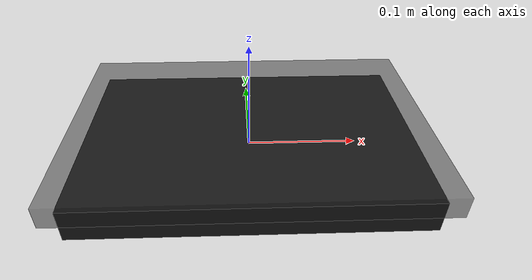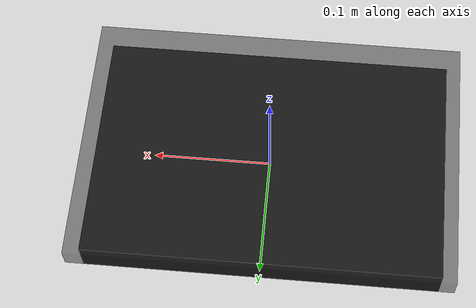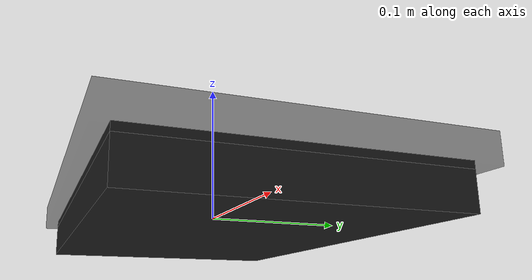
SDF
<?xml version="1.0" ?>
<sdf version="1.9">
  <model name="tray">
    <static>false</static>
    <pose>0 0 0 0 0 0</pose>

    <!-- Label: tray = 4 -->
    <plugin filename="gz-sim-label-system" name="gz::sim::systems::Label">
      <label>4</label>
    </plugin>

    <link name="link">
      <inertial>
        <mass>0.5</mass>
      </inertial>

      <collision name="collision">
        <geometry>
          <box><size>0.30 0.20 0.03</size></box>
        </geometry>
      </collision>

      <visual name="base">
        <geometry>
          <box><size>0.30 0.20 0.03</size></box>
        </geometry>
        <material><diffuse>0.1 0.1 0.1 1</diffuse></material>
      </visual>

      <!-- Rim visual (purely visual) -->
      <visual name="rim">
        <pose>0 0 0.02 0 0 0</pose>
        <geometry>
          <box><size>0.32 0.22 0.02</size></box>
        </geometry>
        <material><diffuse>0.15 0.15 0.15 1</diffuse></material>
        <transparency>0.5</transparency>
      </visual>
    </link>
  </model>
</sdf>
